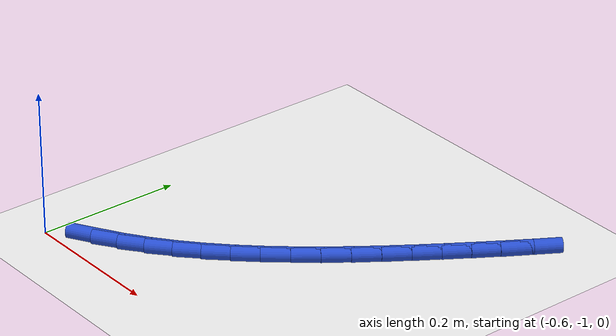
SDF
<sdf version="1.6">
 <world name="default">
  <model name="ground_plane">
   <static>1</static>
   <link name="link">
    <collision name="collision">
     <geometry><plane><normal>0 0 1</normal><size>100 100</size></plane></geometry>
     <surface><friction><ode><mu>100</mu><mu2>50</mu2></ode></friction></surface>
    </collision>
    <visual name="visual">
     <cast_shadows>0</cast_shadows>
     <geometry><plane><normal>0 0 1</normal><size>100 100</size></plane></geometry>
     <material>
      <script><uri>file://media/materials/scripts/gazebo.material</uri><name>Gazebo/WhiteGlow</name></script>
     </material>
    </visual>
   </link>
  </model>
  <model name="line">
   <link name="link_159">
    <pose>-0.5384322031396859 -0.9626209268004299 0.01 0 1.57 0.5229280264618961</pose>
    <collision name="collision">
     <geometry><cylinder><radius>0.01</radius><length>0.08</length></cylinder></geometry>
    </collision>
    <visual name="visual">
     <material>
      <script><name>Gazebo/Blue</name><uri>file://media/materials/scripts/gazebo.material</uri></script>
     </material>
     <geometry><cylinder><radius>0.01</radius><length>0.08</length></cylinder></geometry>
    </visual>
   </link>
   <link name="link_160">
    <pose>-0.5076447268577498 -0.9448732926576471 0.01 0 1.57 0.5933224405153846</pose>
    <collision name="collision">
     <geometry><cylinder><radius>0.01</radius><length>0.08</length></cylinder></geometry>
    </collision>
    <visual name="visual">
     <material>
      <script><name>Gazebo/Blue</name><uri>file://media/materials/scripts/gazebo.material</uri></script>
     </material>
     <geometry><cylinder><radius>0.01</radius><length>0.08</length></cylinder></geometry>
    </visual>
   </link>
   <link name="link_161">
    <pose>-0.47802247809132603 -0.9248966909481637 0.01 0 1.57 0.6572429334005819</pose>
    <collision name="collision">
     <geometry><cylinder><radius>0.01</radius><length>0.08</length></cylinder></geometry>
    </collision>
    <visual name="visual">
     <material>
      <script><name>Gazebo/Blue</name><uri>file://media/materials/scripts/gazebo.material</uri></script>
     </material>
     <geometry><cylinder><radius>0.01</radius><length>0.08</length></cylinder></geometry>
    </visual>
   </link>
   <link name="link_162">
    <pose>-0.44950148632717774 -0.9028871391563735 0.01 0 1.57 0.714657111393602</pose>
    <collision name="collision">
     <geometry><cylinder><radius>0.01</radius><length>0.08</length></cylinder></geometry>
    </collision>
    <visual name="visual">
     <material>
      <script><name>Gazebo/Blue</name><uri>file://media/materials/scripts/gazebo.material</uri></script>
     </material>
     <geometry><cylinder><radius>0.01</radius><length>0.08</length></cylinder></geometry>
    </visual>
   </link>
   <link name="link_163">
    <pose>-0.422017781052068 -0.8790406547666685 0.01 0 1.57 0.7657269837994504</pose>
    <collision name="collision">
     <geometry><cylinder><radius>0.01</radius><length>0.08</length></cylinder></geometry>
    </collision>
    <visual name="visual">
     <material>
      <script><name>Gazebo/Blue</name><uri>file://media/materials/scripts/gazebo.material</uri></script>
     </material>
     <geometry><cylinder><radius>0.01</radius><length>0.08</length></cylinder></geometry>
    </visual>
   </link>
   <link name="link_164">
    <pose>-0.39550739175275984 -0.8535532552634413 0.01 0 1.57 0.8107338533857165</pose>
    <collision name="collision">
     <geometry><cylinder><radius>0.01</radius><length>0.08</length></cylinder></geometry>
    </collision>
    <visual name="visual">
     <material>
      <script><name>Gazebo/Blue</name><uri>file://media/materials/scripts/gazebo.material</uri></script>
     </material>
     <geometry><cylinder><radius>0.01</radius><length>0.08</length></cylinder></geometry>
    </visual>
   </link>
   <link name="link_165">
    <pose>-0.3699063479160164 -0.8266209581310847 0.01 0 1.57 0.8500174107641643</pose>
    <collision name="collision">
     <geometry><cylinder><radius>0.01</radius><length>0.08</length></cylinder></geometry>
    </collision>
    <visual name="visual">
     <material>
      <script><name>Gazebo/Blue</name><uri>file://media/materials/scripts/gazebo.material</uri></script>
     </material>
     <geometry><cylinder><radius>0.01</radius><length>0.08</length></cylinder></geometry>
    </visual>
   </link>
   <link name="link_166">
    <pose>-0.3451506790286012 -0.7984397808539918 0.01 0 1.57 0.8839305780105264</pose>
    <collision name="collision">
     <geometry><cylinder><radius>0.01</radius><length>0.08</length></cylinder></geometry>
    </collision>
    <visual name="visual">
     <material>
      <script><name>Gazebo/Blue</name><uri>file://media/materials/scripts/gazebo.material</uri></script>
     </material>
     <geometry><cylinder><radius>0.01</radius><length>0.08</length></cylinder></geometry>
    </visual>
   </link>
   <link name="link_167">
    <pose>-0.32117641457727636 -0.7692057409165544 0.01 0 1.57 0.9128082057032905</pose>
    <collision name="collision">
     <geometry><cylinder><radius>0.01</radius><length>0.08</length></cylinder></geometry>
    </collision>
    <visual name="visual">
     <material>
      <script><name>Gazebo/Blue</name><uri>file://media/materials/scripts/gazebo.material</uri></script>
     </material>
     <geometry><cylinder><radius>0.01</radius><length>0.08</length></cylinder></geometry>
    </visual>
   </link>
   <link name="link_168">
    <pose>-0.29791958404880553 -0.7391148558031655 0.01 0 1.57 0.9369464189720134</pose>
    <collision name="collision">
     <geometry><cylinder><radius>0.01</radius><length>0.08</length></cylinder></geometry>
    </collision>
    <visual name="visual">
     <material>
      <script><name>Gazebo/Blue</name><uri>file://media/materials/scripts/gazebo.material</uri></script>
     </material>
     <geometry><cylinder><radius>0.01</radius><length>0.08</length></cylinder></geometry>
    </visual>
   </link>
   <link name="link_169">
    <pose>-0.27531621692995184 -0.7083631429982177 0.01 0 1.57 0.9565893294955505</pose>
    <collision name="collision">
     <geometry><cylinder><radius>0.01</radius><length>0.08</length></cylinder></geometry>
    </collision>
    <visual name="visual">
     <material>
      <script><name>Gazebo/Blue</name><uri>file://media/materials/scripts/gazebo.material</uri></script>
     </material>
     <geometry><cylinder><radius>0.01</radius><length>0.08</length></cylinder></geometry>
    </visual>
   </link>
   <link name="link_170">
    <pose>-0.25330234270747826 -0.6771466199861037 0.01 0 1.57 0.9719202871163102</pose>
    <collision name="collision">
     <geometry><cylinder><radius>0.01</radius><length>0.08</length></cylinder></geometry>
    </collision>
    <visual name="visual">
     <material>
      <script><name>Gazebo/Blue</name><uri>file://media/materials/scripts/gazebo.material</uri></script>
     </material>
     <geometry><cylinder><radius>0.01</radius><length>0.08</length></cylinder></geometry>
    </visual>
   </link>
   <link name="link_171">
    <pose>-0.23181399086814802 -0.6456613042512164 0.01 0 1.57 0.9830554258871556</pose>
    <collision name="collision">
     <geometry><cylinder><radius>0.01</radius><length>0.08</length></cylinder></geometry>
    </collision>
    <visual name="visual">
     <material>
      <script><name>Gazebo/Blue</name><uri>file://media/materials/scripts/gazebo.material</uri></script>
     </material>
     <geometry><cylinder><radius>0.01</radius><length>0.08</length></cylinder></geometry>
    </visual>
   </link>
   <link name="link_172">
    <pose>-0.21078719090001014 -0.6141032132759682 0.01 0 1.57 0.991423671763194</pose>
    <collision name="collision">
     <geometry><cylinder><radius>0.01</radius><length>0.08</length></cylinder></geometry>
    </collision>
    <visual name="visual">
     <material>
      <script><name>Gazebo/Blue</name><uri>file://media/materials/scripts/gazebo.material</uri></script>
     </material>
     <geometry><cylinder><radius>0.01</radius><length>0.08</length></cylinder></geometry>
    </visual>
   </link>
   <link name="link_173">
    <pose>-0.19018898546629048 -0.5826205890022951 0.01 0 1.57 1.0025428057331949</pose>
    <collision name="collision">
     <geometry><cylinder><radius>0.01</radius><length>0.08</length></cylinder></geometry>
    </collision>
    <visual name="visual">
     <material>
      <script><name>Gazebo/Blue</name><uri>file://media/materials/scripts/gazebo.material</uri></script>
     </material>
     <geometry><cylinder><radius>0.01</radius><length>0.08</length></cylinder></geometry>
    </visual>
   </link>
   <link name="link_174">
    <pose>-0.1701091841786137 -0.5511725519010641 0.01 0 1.57 1.0178550341021453</pose>
    <collision name="collision">
     <geometry><cylinder><radius>0.01</radius><length>0.08</length></cylinder></geometry>
    </collision>
    <visual name="visual">
     <material>
      <script><name>Gazebo/Blue</name><uri>file://media/materials/scripts/gazebo.material</uri></script>
     </material>
     <geometry><cylinder><radius>0.01</radius><length>0.08</length></cylinder></geometry>
    </visual>
   </link>
  </model>
 </world>
</sdf>
